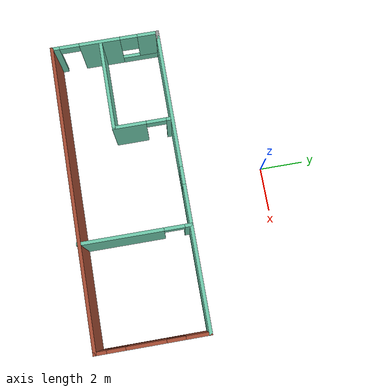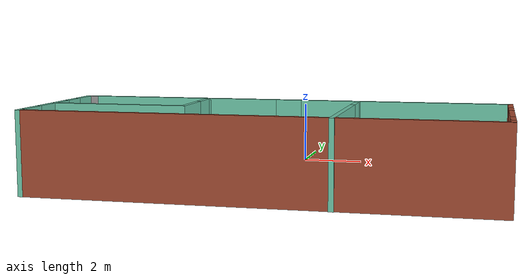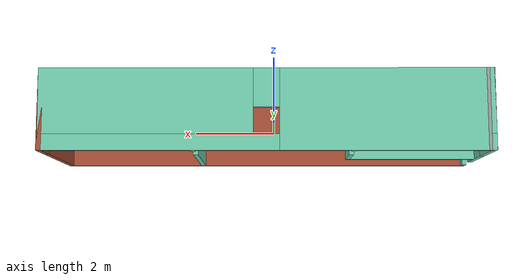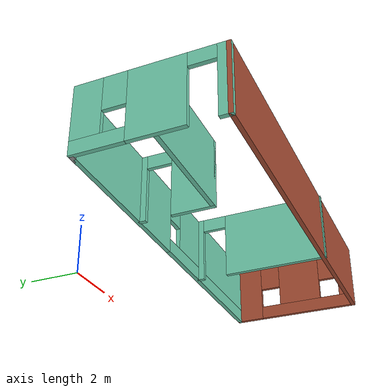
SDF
<?xml version='1.0'?>
<sdf version='1.7'>
  <model name='Apartment1'>
    <pose>0.21 -4.3825 0 0 -0 0</pose>
    <link name='Wall_12'>
      <pose>0.125 0.5825 0 0 -0 0</pose>
      <visual name='Wall_12_Visual_0'>
        <pose>-3.6375 0 1.25 0 -0 0</pose>
        <geometry>
          <box>
            <size>6.225 0.15 2.5</size>
          </box>
        </geometry>
        <material>
          <script>
            <uri>file://media/materials/scripts/gazebo.material</uri>
            <name>Gazebo/Grey</name>
          </script>
          <ambient>0.435294 0.796078 0.67451 1</ambient>
        </material>
        <meta>
          <layer>0</layer>
        </meta>
      </visual>
      <collision name='Wall_12_Collision_0'>
        <geometry>
          <box>
            <size>6.225 0.15 2.5</size>
          </box>
        </geometry>
        <pose>-3.6375 0 1.25 0 -0 0</pose>
      </collision>
      <visual name='Wall_12_Visual_1'>
        <pose>3.1125 0 0.25 0 -0 0</pose>
        <geometry>
          <box>
            <size>7.275 0.15 0.5</size>
          </box>
        </geometry>
        <material>
          <script>
            <uri>file://media/materials/scripts/gazebo.material</uri>
            <name>Gazebo/Grey</name>
          </script>
          <ambient>0.435294 0.796078 0.67451 1</ambient>
        </material>
        <meta>
          <layer>0</layer>
        </meta>
      </visual>
      <collision name='Wall_12_Collision_1'>
        <geometry>
          <box>
            <size>7.275 0.15 0.5</size>
          </box>
        </geometry>
        <pose>3.1125 0 0.25 0 -0 0</pose>
      </collision>
      <visual name='Wall_12_Visual_2'>
        <pose>3.5125 0 1.5 0 -0 0</pose>
        <geometry>
          <box>
            <size>6.475 0.15 2</size>
          </box>
        </geometry>
        <material>
          <script>
            <uri>file://media/materials/scripts/gazebo.material</uri>
            <name>Gazebo/Grey</name>
          </script>
          <ambient>0.435294 0.796078 0.67451 1</ambient>
        </material>
        <meta>
          <layer>0</layer>
        </meta>
      </visual>
      <collision name='Wall_12_Collision_2'>
        <geometry>
          <box>
            <size>6.475 0.15 2</size>
          </box>
        </geometry>
        <pose>3.5125 0 1.5 0 -0 0</pose>
      </collision>
      <visual name='Wall_12_Visual_3'>
        <pose>-0.125 0 1.9 0 -0 0</pose>
        <geometry>
          <box>
            <size>0.8 0.15 1.2</size>
          </box>
        </geometry>
        <material>
          <script>
            <uri>file://media/materials/scripts/gazebo.material</uri>
            <name>Gazebo/Grey</name>
          </script>
          <ambient>0.435294 0.796078 0.67451 1</ambient>
        </material>
        <meta>
          <layer>0</layer>
        </meta>
      </visual>
      <collision name='Wall_12_Collision_3'>
        <geometry>
          <box>
            <size>0.8 0.15 1.2</size>
          </box>
        </geometry>
        <pose>-0.125 0 1.9 0 -0 0</pose>
      </collision>
    </link>
    <link name='Wall_13'>
      <pose>6.8 -1.8425 0 0 -0 -1.5708</pose>
      <visual name='Wall_13_Visual_0'>
        <pose>-1.9425 0 1.25 0 -0 0</pose>
        <geometry>
          <box>
            <size>1.115 0.15 2.5</size>
          </box>
        </geometry>
        <material>
          <script>
            <uri>file://media/materials/scripts/gazebo.material</uri>
            <name>Gazebo/Bricks</name>
          </script>
          <ambient>1 1 1 1</ambient>
        </material>
        <meta>
          <layer>0</layer>
        </meta>
      </visual>
      <collision name='Wall_13_Collision_0'>
        <geometry>
          <box>
            <size>1.115 0.15 2.5</size>
          </box>
        </geometry>
        <pose>-1.9425 0 1.25 0 -0 0</pose>
      </collision>
      <visual name='Wall_13_Visual_1'>
        <pose>0.5575 0 0.25 0 -0 0</pose>
        <geometry>
          <box>
            <size>3.885 0.15 0.5</size>
          </box>
        </geometry>
        <material>
          <script>
            <uri>file://media/materials/scripts/gazebo.material</uri>
            <name>Gazebo/Bricks</name>
          </script>
          <ambient>1 1 1 1</ambient>
        </material>
        <meta>
          <layer>0</layer>
        </meta>
      </visual>
      <collision name='Wall_13_Collision_1'>
        <geometry>
          <box>
            <size>3.885 0.15 0.5</size>
          </box>
        </geometry>
        <pose>0.5575 0 0.25 0 -0 0</pose>
      </collision>
      <visual name='Wall_13_Visual_2'>
        <pose>0.27 0 1.5 0 -0 0</pose>
        <geometry>
          <box>
            <size>1.71 0.15 2</size>
          </box>
        </geometry>
        <material>
          <script>
            <uri>file://media/materials/scripts/gazebo.material</uri>
            <name>Gazebo/Bricks</name>
          </script>
          <ambient>1 1 1 1</ambient>
        </material>
        <meta>
          <layer>0</layer>
        </meta>
      </visual>
      <collision name='Wall_13_Collision_2'>
        <geometry>
          <box>
            <size>1.71 0.15 2</size>
          </box>
        </geometry>
        <pose>0.27 0 1.5 0 -0 0</pose>
      </collision>
      <visual name='Wall_13_Visual_3'>
        <pose>2.2125 0 1.5 0 -0 0</pose>
        <geometry>
          <box>
            <size>0.575 0.15 2</size>
          </box>
        </geometry>
        <material>
          <script>
            <uri>file://media/materials/scripts/gazebo.material</uri>
            <name>Gazebo/Bricks</name>
          </script>
          <ambient>1 1 1 1</ambient>
        </material>
        <meta>
          <layer>0</layer>
        </meta>
      </visual>
      <collision name='Wall_13_Collision_3'>
        <geometry>
          <box>
            <size>0.575 0.15 2</size>
          </box>
        </geometry>
        <pose>2.2125 0 1.5 0 -0 0</pose>
      </collision>
      <visual name='Wall_13_Visual_4'>
        <pose>-0.985 0 1.9 0 -0 0</pose>
        <geometry>
          <box>
            <size>0.8 0.15 1.2</size>
          </box>
        </geometry>
        <material>
          <script>
            <uri>file://media/materials/scripts/gazebo.material</uri>
            <name>Gazebo/Bricks</name>
          </script>
          <ambient>1 1 1 1</ambient>
        </material>
        <meta>
          <layer>0</layer>
        </meta>
      </visual>
      <collision name='Wall_13_Collision_4'>
        <geometry>
          <box>
            <size>0.8 0.15 1.2</size>
          </box>
        </geometry>
        <pose>-0.985 0 1.9 0 -0 0</pose>
      </collision>
      <visual name='Wall_13_Visual_5'>
        <pose>1.525 0 1.9 0 -0 0</pose>
        <geometry>
          <box>
            <size>0.8 0.15 1.2</size>
          </box>
        </geometry>
        <material>
          <script>
            <uri>file://media/materials/scripts/gazebo.material</uri>
            <name>Gazebo/Bricks</name>
          </script>
          <ambient>1 1 1 1</ambient>
        </material>
        <meta>
          <layer>0</layer>
        </meta>
      </visual>
      <collision name='Wall_13_Collision_5'>
        <geometry>
          <box>
            <size>0.8 0.15 1.2</size>
          </box>
        </geometry>
        <pose>1.525 0 1.9 0 -0 0</pose>
      </collision>
    </link>
    <link name='Wall_14'>
      <collision name='Wall_14_Collision'>
        <geometry>
          <box>
            <size>13.75 0.15 2.5</size>
          </box>
        </geometry>
        <pose>0 0 1.25 0 -0 0</pose>
      </collision>
      <visual name='Wall_14_Visual'>
        <pose>0 0 1.25 0 -0 0</pose>
        <geometry>
          <box>
            <size>13.75 0.15 2.5</size>
          </box>
        </geometry>
        <material>
          <script>
            <uri>file://media/materials/scripts/gazebo.material</uri>
            <name>Gazebo/Bricks</name>
          </script>
          <ambient>1 1 1 1</ambient>
        </material>
        <meta>
          <layer>0</layer>
        </meta>
      </visual>
      <pose>-0 -4.2675 0 0 -0 3.14159</pose>
    </link>
    <link name='Wall_15'>
      <pose>-6.8 -1.8425 0 0 -0 1.5708</pose>
      <visual name='Wall_15_Visual_0'>
        <pose>-2.2875 0 1.25 0 -0 0</pose>
        <geometry>
          <box>
            <size>0.425 0.15 2.5</size>
          </box>
        </geometry>
        <material>
          <script>
            <uri>file://media/materials/scripts/gazebo.material</uri>
            <name>Gazebo/Grey</name>
          </script>
          <ambient>0.435294 0.796078 0.67451 1</ambient>
        </material>
        <meta>
          <layer>0</layer>
        </meta>
      </visual>
      <collision name='Wall_15_Collision_0'>
        <geometry>
          <box>
            <size>0.425 0.15 2.5</size>
          </box>
        </geometry>
        <pose>-2.2875 0 1.25 0 -0 0</pose>
      </collision>
      <visual name='Wall_15_Visual_1'>
        <pose>-0.24 0 1.25 0 -0 0</pose>
        <geometry>
          <box>
            <size>1.87 0.15 2.5</size>
          </box>
        </geometry>
        <material>
          <script>
            <uri>file://media/materials/scripts/gazebo.material</uri>
            <name>Gazebo/Grey</name>
          </script>
          <ambient>0.435294 0.796078 0.67451 1</ambient>
        </material>
        <meta>
          <layer>0</layer>
        </meta>
      </visual>
      <collision name='Wall_15_Collision_1'>
        <geometry>
          <box>
            <size>1.87 0.15 2.5</size>
          </box>
        </geometry>
        <pose>-0.24 0 1.25 0 -0 0</pose>
      </collision>
      <visual name='Wall_15_Visual_2'>
        <pose>1.5975 0 0.25 0 -0 0</pose>
        <geometry>
          <box>
            <size>1.805 0.15 0.5</size>
          </box>
        </geometry>
        <material>
          <script>
            <uri>file://media/materials/scripts/gazebo.material</uri>
            <name>Gazebo/Grey</name>
          </script>
          <ambient>0.435294 0.796078 0.67451 1</ambient>
        </material>
        <meta>
          <layer>0</layer>
        </meta>
      </visual>
      <collision name='Wall_15_Collision_2'>
        <geometry>
          <box>
            <size>1.805 0.15 0.5</size>
          </box>
        </geometry>
        <pose>1.5975 0 0.25 0 -0 0</pose>
      </collision>
      <visual name='Wall_15_Visual_3'>
        <pose>1.9975 0 1.5 0 -0 0</pose>
        <geometry>
          <box>
            <size>1.005 0.15 2</size>
          </box>
        </geometry>
        <material>
          <script>
            <uri>file://media/materials/scripts/gazebo.material</uri>
            <name>Gazebo/Grey</name>
          </script>
          <ambient>0.435294 0.796078 0.67451 1</ambient>
        </material>
        <meta>
          <layer>0</layer>
        </meta>
      </visual>
      <collision name='Wall_15_Collision_3'>
        <geometry>
          <box>
            <size>1.005 0.15 2</size>
          </box>
        </geometry>
        <pose>1.9975 0 1.5 0 -0 0</pose>
      </collision>
      <visual name='Wall_15_Visual_4'>
        <pose>1.095 0 1.9 0 -0 0</pose>
        <geometry>
          <box>
            <size>0.8 0.15 1.2</size>
          </box>
        </geometry>
        <material>
          <script>
            <uri>file://media/materials/scripts/gazebo.material</uri>
            <name>Gazebo/Grey</name>
          </script>
          <ambient>0.435294 0.796078 0.67451 1</ambient>
        </material>
        <meta>
          <layer>0</layer>
        </meta>
      </visual>
      <collision name='Wall_15_Collision_4'>
        <geometry>
          <box>
            <size>0.8 0.15 1.2</size>
          </box>
        </geometry>
        <pose>1.095 0 1.9 0 -0 0</pose>
      </collision>
      <visual name='Wall_15_Visual_5'>
        <pose>-1.625 0 2.25 0 -0 0</pose>
        <geometry>
          <box>
            <size>0.9 0.15 0.5</size>
          </box>
        </geometry>
        <material>
          <script>
            <uri>file://media/materials/scripts/gazebo.material</uri>
            <name>Gazebo/Grey</name>
          </script>
          <ambient>0.435294 0.796078 0.67451 1</ambient>
        </material>
        <meta>
          <layer>0</layer>
        </meta>
      </visual>
      <collision name='Wall_15_Collision_5'>
        <geometry>
          <box>
            <size>0.9 0.15 0.5</size>
          </box>
        </geometry>
        <pose>-1.625 0 2.25 0 -0 0</pose>
      </collision>
    </link>
    <link name='Wall_16'>
      <collision name='Wall_16_Collision'>
        <geometry>
          <box>
            <size>0.4 0.15 2.5</size>
          </box>
        </geometry>
        <pose>0 0 1.25 0 -0 0</pose>
      </collision>
      <visual name='Wall_16_Visual'>
        <pose>0 0 1.25 0 -0 0</pose>
        <geometry>
          <box>
            <size>0.4 0.15 2.5</size>
          </box>
        </geometry>
        <material>
          <script>
            <uri>file://media/materials/scripts/gazebo.material</uri>
            <name>Gazebo/Grey</name>
          </script>
          <ambient>1 1 1 1</ambient>
        </material>
        <meta>
          <layer>0</layer>
        </meta>
      </visual>
      <pose>-6.675 0.5825 0 0 -0 0</pose>
    </link>
    <link name='Wall_18'>
      <collision name='Wall_18_Collision'>
        <geometry>
          <box>
            <size>4.25 0.15 2.5</size>
          </box>
        </geometry>
        <pose>0 0 1.25 0 -0 0</pose>
      </collision>
      <visual name='Wall_18_Visual'>
        <pose>0 0 1.25 0 -0 0</pose>
        <geometry>
          <box>
            <size>4.25 0.15 2.5</size>
          </box>
        </geometry>
        <material>
          <script>
            <uri>file://media/materials/scripts/gazebo.material</uri>
            <name>Gazebo/Grey</name>
          </script>
          <ambient>0.435294 0.796078 0.67451 1</ambient>
        </material>
        <meta>
          <layer>0</layer>
        </meta>
      </visual>
      <pose>-4.69 -2.0475 0 0 -0 0</pose>
    </link>
    <link name='Wall_19'>
      <pose>-2.64 -0.7475 0 0 -0 1.5708</pose>
      <visual name='Wall_19_Visual_0'>
        <pose>-0.6125 0 1.25 0 -0 0</pose>
        <geometry>
          <box>
            <size>1.525 0.15 2.5</size>
          </box>
        </geometry>
        <material>
          <script>
            <uri>file://media/materials/scripts/gazebo.material</uri>
            <name>Gazebo/Grey</name>
          </script>
          <ambient>0.435294 0.796078 0.67451 1</ambient>
        </material>
        <meta>
          <layer>0</layer>
        </meta>
      </visual>
      <collision name='Wall_19_Collision_0'>
        <geometry>
          <box>
            <size>1.525 0.15 2.5</size>
          </box>
        </geometry>
        <pose>-0.6125 0 1.25 0 -0 0</pose>
      </collision>
      <visual name='Wall_19_Visual_1'>
        <pose>1.2125 0 1.25 0 -0 0</pose>
        <geometry>
          <box>
            <size>0.325 0.15 2.5</size>
          </box>
        </geometry>
        <material>
          <script>
            <uri>file://media/materials/scripts/gazebo.material</uri>
            <name>Gazebo/Grey</name>
          </script>
          <ambient>0.435294 0.796078 0.67451 1</ambient>
        </material>
        <meta>
          <layer>0</layer>
        </meta>
      </visual>
      <collision name='Wall_19_Collision_1'>
        <geometry>
          <box>
            <size>0.325 0.15 2.5</size>
          </box>
        </geometry>
        <pose>1.2125 0 1.25 0 -0 0</pose>
      </collision>
      <visual name='Wall_19_Visual_2'>
        <pose>0.6 0 2.25 0 -0 0</pose>
        <geometry>
          <box>
            <size>0.9 0.15 0.5</size>
          </box>
        </geometry>
        <material>
          <script>
            <uri>file://media/materials/scripts/gazebo.material</uri>
            <name>Gazebo/Grey</name>
          </script>
          <ambient>0.435294 0.796078 0.67451 1</ambient>
        </material>
        <meta>
          <layer>0</layer>
        </meta>
      </visual>
      <collision name='Wall_19_Collision_2'>
        <geometry>
          <box>
            <size>0.9 0.15 0.5</size>
          </box>
        </geometry>
        <pose>0.6 0 2.25 0 -0 0</pose>
      </collision>
    </link>
    <link name='Wall_21'>
      <pose>2.2 -1.8825 0 0 -0 -1.5708</pose>
      <visual name='Wall_21_Visual_0'>
        <pose>-2.3375 0 1.25 0 -0 0</pose>
        <geometry>
          <box>
            <size>0.325 0.15 2.5</size>
          </box>
        </geometry>
        <material>
          <script>
            <uri>file://media/materials/scripts/gazebo.material</uri>
            <name>Gazebo/Grey</name>
          </script>
          <ambient>0.435294 0.796078 0.67451 1</ambient>
        </material>
        <meta>
          <layer>0</layer>
        </meta>
      </visual>
      <collision name='Wall_21_Collision_0'>
        <geometry>
          <box>
            <size>0.325 0.15 2.5</size>
          </box>
        </geometry>
        <pose>-2.3375 0 1.25 0 -0 0</pose>
      </collision>
      <visual name='Wall_21_Visual_1'>
        <pose>0.6125 0 1.25 0 -0 0</pose>
        <geometry>
          <box>
            <size>3.775 0.15 2.5</size>
          </box>
        </geometry>
        <material>
          <script>
            <uri>file://media/materials/scripts/gazebo.material</uri>
            <name>Gazebo/Grey</name>
          </script>
          <ambient>0.435294 0.796078 0.67451 1</ambient>
        </material>
        <meta>
          <layer>0</layer>
        </meta>
      </visual>
      <collision name='Wall_21_Collision_1'>
        <geometry>
          <box>
            <size>3.775 0.15 2.5</size>
          </box>
        </geometry>
        <pose>0.6125 0 1.25 0 -0 0</pose>
      </collision>
      <visual name='Wall_21_Visual_2'>
        <pose>-1.725 0 2.25 0 -0 0</pose>
        <geometry>
          <box>
            <size>0.9 0.15 0.5</size>
          </box>
        </geometry>
        <material>
          <script>
            <uri>file://media/materials/scripts/gazebo.material</uri>
            <name>Gazebo/Grey</name>
          </script>
          <ambient>0.435294 0.796078 0.67451 1</ambient>
        </material>
        <meta>
          <layer>0</layer>
        </meta>
      </visual>
      <collision name='Wall_21_Collision_2'>
        <geometry>
          <box>
            <size>0.9 0.15 0.5</size>
          </box>
        </geometry>
        <pose>-1.725 0 2.25 0 -0 0</pose>
      </collision>
    </link>
    <static>1</static>
  </model>
</sdf>
